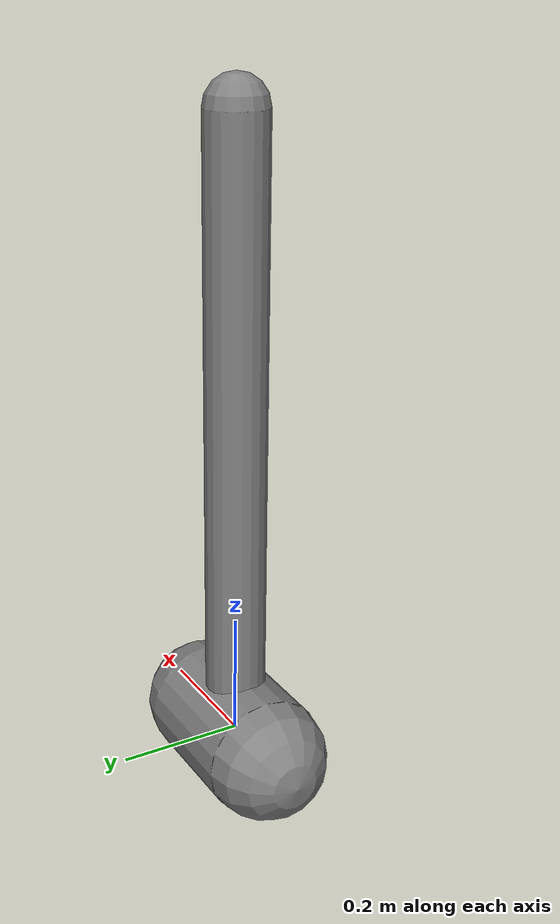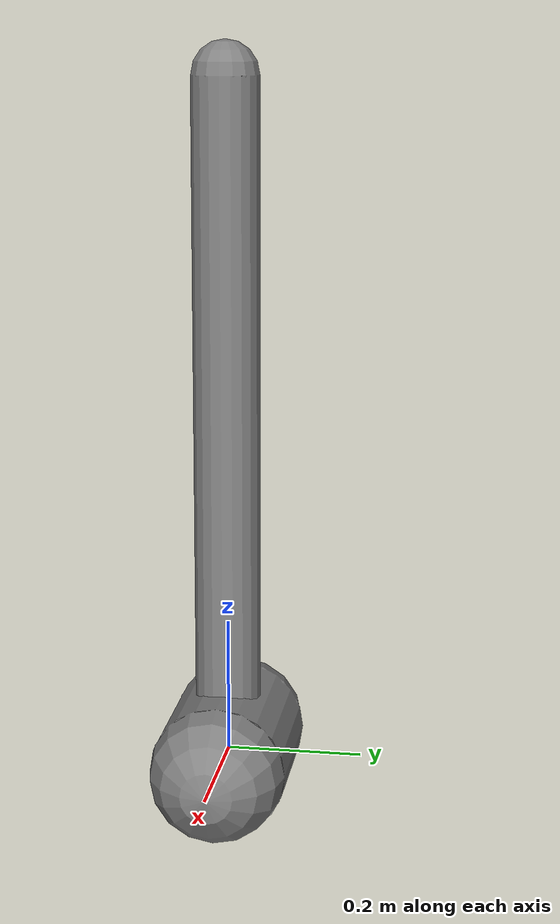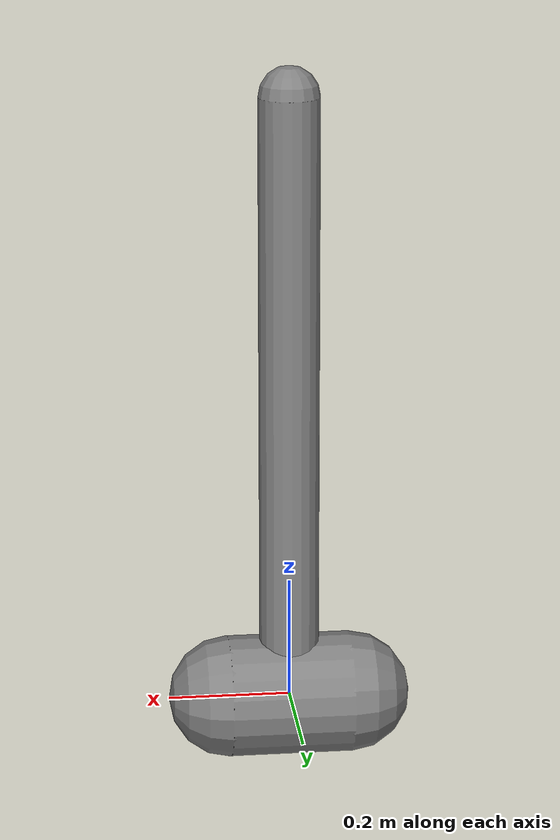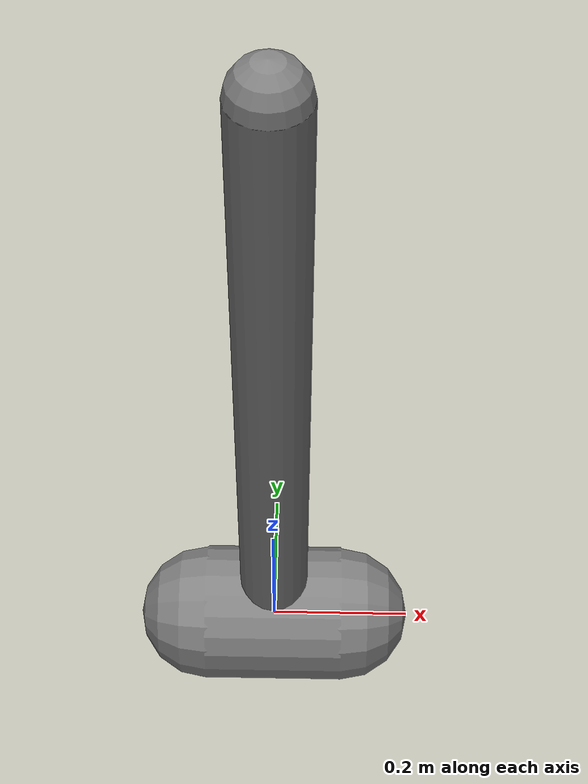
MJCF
<!-- An easier version of inverted pendulum: a) No x limit, b) So omit the rail geom. -->
<mujoco model="inverted pendulum">
    <compiler angle="radian"/>
	<option timestep="0.002" iterations="1" ls_iterations="4" solver="Newton" gravity="0 0 -9.81">
		<flag eulerdamp="disable"/>
	</option>
	<default>
		<joint armature="0" damping="0.1" limited="true"/>
		<geom contype="0" friction="1 0.1 0.1" />
		<tendon/>
		<motor ctrlrange="-3 3"/>
	</default>
		<!-- brax custom params -->
	<size nstack="3000"/>
	<worldbody>
		<!--geom name="ground" type="plane" pos="0 0 0" /-->
		<body name="cart" pos="0 0 0">
		    <camera name="track" pos="0 -3.5 1" xyaxes="1 0 0 0 0 1" mode="track"/>

			<joint axis="1 0 0" limited="false" name="slider" pos="0 0 0" range="-4 4" type="slide"/>
			<geom name="cart" pos="0 0 0" quat="0.707 0 0.707 0" size="0.1 0.1" type="capsule"/>
			<body name="pole" pos="0 0 0">
				<joint axis="0 1 0" name="hinge" pos="0 0 0" limited="true" range="-0.8 0.8" type="hinge"/>
				<geom fromto="0 0 0 0.001 0 1" name="cpole" size="0.049 0.5" type="capsule"/>
			</body>
		</body>
	</worldbody>
	<actuator>
		<motor ctrllimited="true" ctrlrange="-4 4" gear="100" joint="slider" name="slide"/>
	</actuator>
</mujoco>
